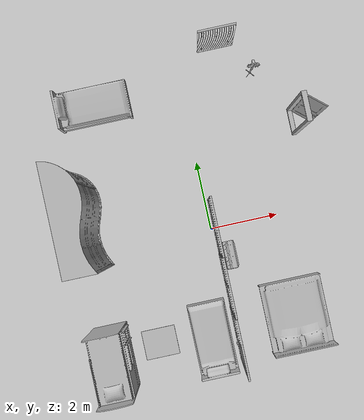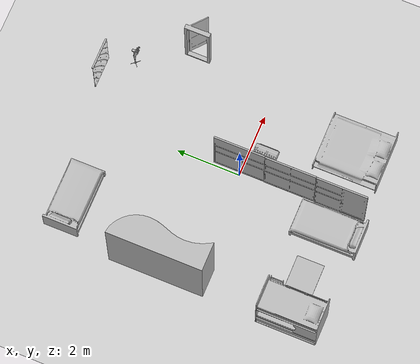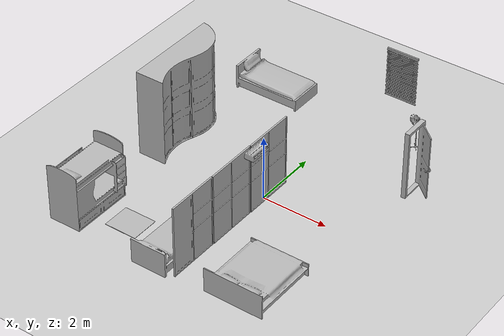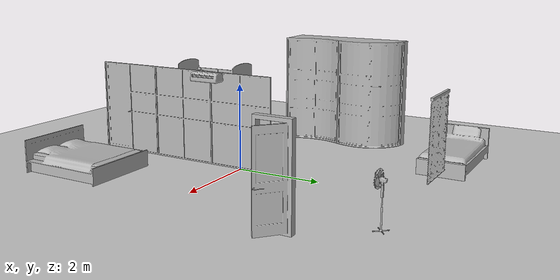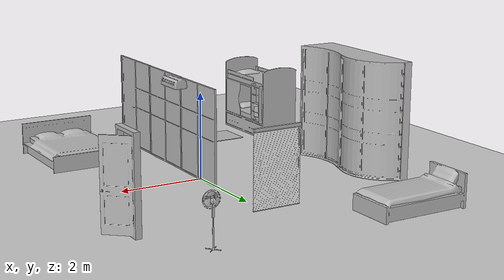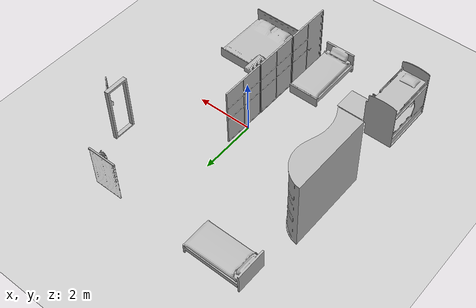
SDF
<sdf version="1.4">
 <world name="default">
  <light name="sun" type="directional">
   <pose>0 0 10 0 -0 0</pose>
   <diffuse>0.8 0.8 0.8 1</diffuse>
   <specular>0.2 0.2 0.2 1</specular>
   <attenuation>
    <range>1000</range>
    <constant>0.9</constant>
    <linear>0.01</linear>
    <quadratic>0.001</quadratic>
   </attenuation>
   <direction>-0.5 0.1 -0.9</direction>
  </light>
  <model name="ground_plane">
   <static>1</static>
   <link name="link">
    <collision name="collision">
     <geometry><plane><normal>0 0 1</normal><size>100 100</size></plane></geometry>
     <surface><friction><ode><mu>100</mu><mu2>50</mu2></ode></friction></surface>
    </collision>
    <visual name="visual">
     <cast_shadows>0</cast_shadows>
     <geometry><plane><normal>0 0 1</normal><size>100 100</size></plane></geometry>
     <material>
      <script><uri>file://media/materials/scripts/gazebo.material</uri><name>Gazebo/Grey</name></script>
     </material>
    </visual>
    <velocity_decay><linear>0</linear><angular>0</angular></velocity_decay>
   </link>
  </model>
  <physics type="ode">
   <max_step_size>0.001</max_step_size>
   <real_time_factor>1</real_time_factor>
   <real_time_update_rate>1000</real_time_update_rate>
   <gravity>0 0 -9.8</gravity>
  </physics>
  <scene><ambient>0.4 0.4 0.4 1</ambient><background>0.7 0.7 0.7 1</background><shadows>1</shadows></scene>
  <spherical_coordinates>
   <surface_model>EARTH_WGS84</surface_model>
   <latitude_deg>0</latitude_deg>
   <longitude_deg>0</longitude_deg>
   <elevation>0</elevation>
   <heading_deg>0</heading_deg>
  </spherical_coordinates>
  <model name="747_0">
   <pose>1.15108 4.93618 0.9 0 -0 1.5708</pose>
   <static>1</static>
   <link name="link">
    <collision name="collision"><geometry><box><size>0.05 1 2</size></box></geometry></collision>
    <visual name="visual"><geometry><mesh><uri>model://747/747.dae</uri></mesh></geometry></visual>
    <velocity_decay><linear>0</linear><angular>0</angular></velocity_decay>
   </link>
  </model>
  <model name="270_0">
   <pose>-3.44321 -3.08913 0.05 0 -0 0</pose>
   <static>1</static>
   <link name="link">
    <collision name="collision"><geometry><box><size>1.10097 1.9 2</size></box></geometry></collision>
    <visual name="visual"><geometry><mesh><uri>model://270/270.dae</uri></mesh></geometry></visual>
    <velocity_decay><linear>0</linear><angular>0</angular></velocity_decay>
   </link>
  </model>
  <model name="78_0">
   <pose>-2.58383 4.23341 0.05 0 -0 0</pose>
   <static>1</static>
   <link name="link">
    <collision name="collision"><geometry><box><size>2.09 1.1 2</size></box></geometry></collision>
    <visual name="visual"><geometry><mesh><uri>model://78/78.dae</uri></mesh></geometry></visual>
    <velocity_decay><linear>0</linear><angular>0</angular></velocity_decay>
   </link>
  </model>
  <model name="78_1">
   <pose>-0.624921 -3.10113 0.05 0 -0 1.5708</pose>
   <static>1</static>
   <link name="link">
    <collision name="collision"><geometry><box><size>2.09 1.1 2</size></box></geometry></collision>
    <visual name="visual"><geometry><mesh><uri>model://78/78.dae</uri></mesh></geometry></visual>
    <velocity_decay><linear>0</linear><angular>0</angular></velocity_decay>
   </link>
  </model>
  <model name="502_0">
   <pose>0.083075 -3.16284 0.05 0 -0 0</pose>
   <static>1</static>
   <link name="link">
    <collision name="collision"><geometry><box><size>0.160064 1.6 2</size></box></geometry></collision>
    <visual name="visual"><geometry><mesh><uri>model://502/502.dae</uri></mesh></geometry></visual>
    <velocity_decay><linear>0</linear><angular>0</angular></velocity_decay>
   </link>
  </model>
  <model name="498_0">
   <pose>0.095078 -1.54863 0.05 0 -0 0</pose>
   <static>1</static>
   <link name="link">
    <collision name="collision"><geometry><box><size>0.05 1.6 2</size></box></geometry></collision>
    <visual name="visual"><geometry><mesh><uri>model://498/498.dae</uri></mesh></geometry></visual>
    <velocity_decay><linear>0</linear><angular>0</angular></velocity_decay>
   </link>
  </model>
  <model name="498_1">
   <pose>0.107076 0.062279 0.05 0 -0 0</pose>
   <static>1</static>
   <link name="link">
    <collision name="collision"><geometry><box><size>0.05 1.6 2</size></box></geometry></collision>
    <visual name="visual"><geometry><mesh><uri>model://498/498.dae</uri></mesh></geometry></visual>
    <velocity_decay><linear>0</linear><angular>0</angular></velocity_decay>
   </link>
  </model>
  <model name="153_0">
   <pose>-2.16876 -2.97123 0.05 0 0 -1.5708</pose>
   <static>1</static>
   <link name="link">
    <collision name="collision"><geometry><box><size>0.86 1 0</size></box></geometry></collision>
    <visual name="visual"><geometry><mesh><uri>model://153/153.dae</uri></mesh></geometry></visual>
    <velocity_decay><linear>0</linear><angular>0</angular></velocity_decay>
   </link>
  </model>
  <model name="122_0">
   <pose>3.02212 2.59698 0.02 0 -0 3.14159</pose>
   <static>1</static>
   <link name="link">
    <collision name="collision"><geometry><box><size>0.650001 0.8 2</size></box></geometry></collision>
    <visual name="visual"><geometry><mesh><uri>model://122/122.dae</uri></mesh></geometry></visual>
    <velocity_decay><linear>0</linear><angular>0</angular></velocity_decay>
   </link>
  </model>
  <model name="205_0">
   <pose>1.90295 -2.94044 0.05 0 -0 1.5708</pose>
   <static>1</static>
   <link name="link">
    <collision name="collision"><geometry><box><size>2.03 1.8 2</size></box></geometry></collision>
    <visual name="visual"><geometry><mesh><uri>model://205/205.dae</uri></mesh></geometry></visual>
    <velocity_decay><linear>0</linear><angular>0</angular></velocity_decay>
   </link>
  </model>
  <model name="773_0">
   <pose>-3.45517 1.06287 0.05 0 -0 0</pose>
   <static>1</static>
   <link name="link">
    <collision name="collision"><geometry><box><size>0.9 2.99973 2</size></box></geometry></collision>
    <visual name="visual"><geometry><mesh><uri>model://773/773.dae</uri></mesh></geometry></visual>
    <velocity_decay><linear>0</linear><angular>0</angular></velocity_decay>
   </link>
  </model>
  <model name="226_0">
   <pose>2.11281 4.27529 0.05 0 0 -1.65468</pose>
   <static>1</static>
   <link name="link">
    <collision name="collision"><geometry><box><size>0.229955 0.369998 2</size></box></geometry></collision>
    <visual name="visual"><geometry><mesh><uri>model://226/226.dae</uri></mesh></geometry></visual>
    <velocity_decay><linear>0</linear><angular>0</angular></velocity_decay>
   </link>
  </model>
  <model name="225_0">
   <pose>0.275075 -0.71313 2.05 0 -0 0</pose>
   <static>1</static>
   <link name="link">
    <collision name="collision"><geometry><box><size>0.31 0.710003 2</size></box></geometry></collision>
    <visual name="visual"><geometry><mesh><uri>model://225/225.dae</uri></mesh></geometry></visual>
    <velocity_decay><linear>0</linear><angular>0</angular></velocity_decay>
   </link>
  </model>
 </world>
</sdf>
